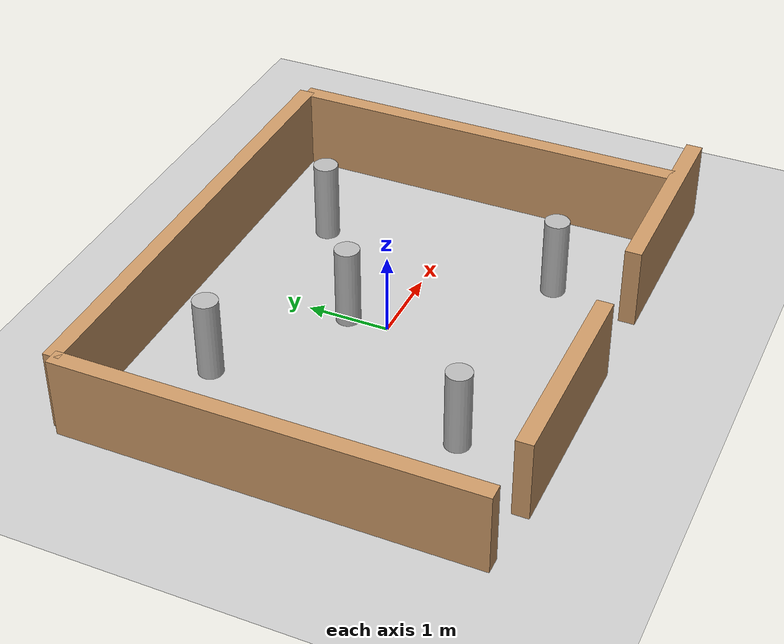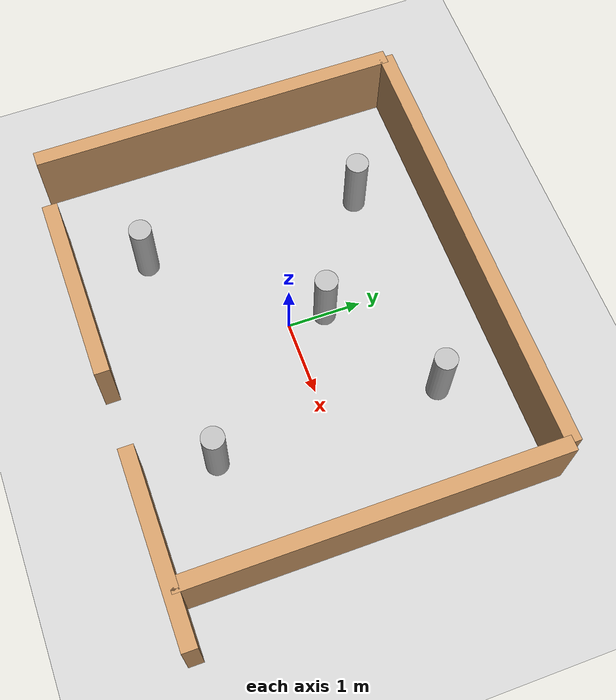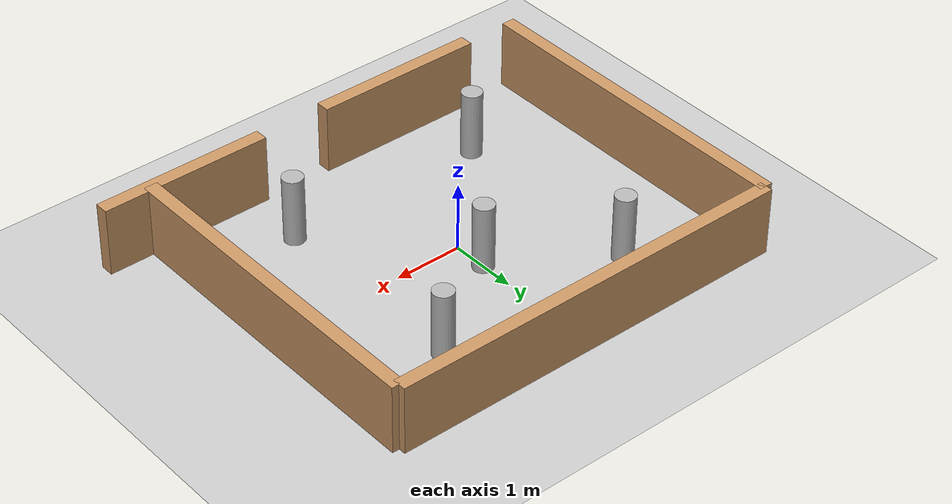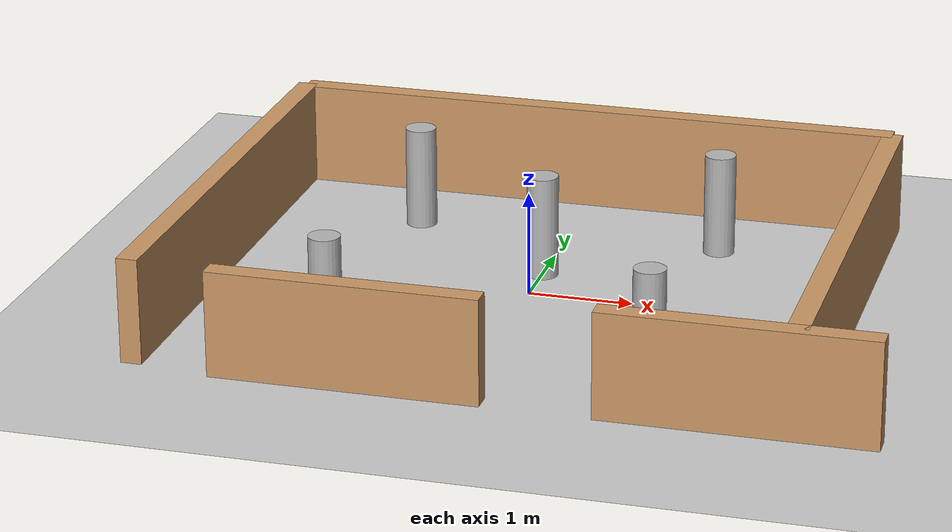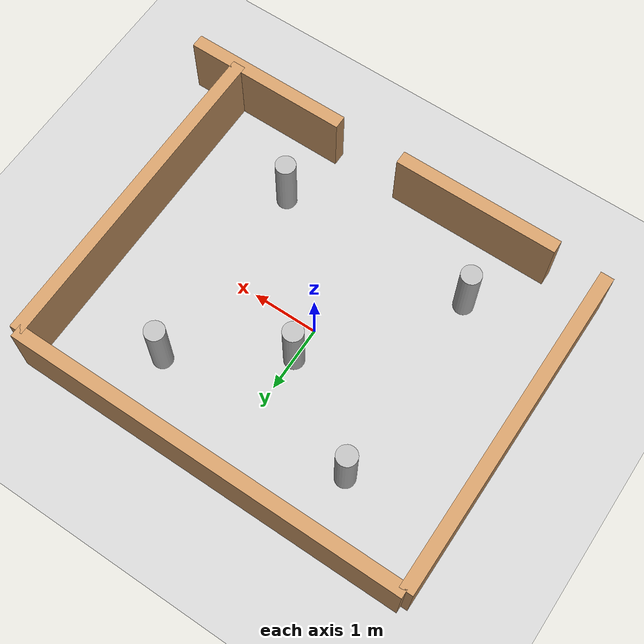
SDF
<?xml version="1.0" ?>
<sdf version="1.6">
  <world name="big_house_world">
    <include><uri>model://ground_plane</uri></include>
    <include><uri>model://sun</uri></include>
    <model name="wall_back"><static>true</static><link name="l"><pose>0 2.5 0.5 0 0 0</pose><collision name="c"><geometry><box><size>6 0.2 1.0</size></box></geometry></collision><visual name="v"><geometry><box><size>6 0.2 1.0</size></box></geometry><material><ambient>0.8 0.6 0.4 1</ambient></material></visual></link></model>
    <model name="wall_front_left"><static>true</static><link name="l"><pose>-1 -2.5 0.5 0 0 0</pose><collision name="c"><geometry><box><size>2.5 0.2 1.0</size></box></geometry></collision><visual name="v"><geometry><box><size>2.5 0.2 1.0</size></box></geometry><material><ambient>0.8 0.6 0.4 1</ambient></material></visual></link></model>
    <model name="wall_front_right"><static>true</static><link name="l"><pose>2.5 -2.5 0.5 0 0 0</pose><collision name="c"><geometry><box><size>2.5 0.2 1.0</size></box></geometry></collision><visual name="v"><geometry><box><size>2.5 0.2 1.0</size></box></geometry><material><ambient>0.8 0.6 0.4 1</ambient></material></visual></link></model>
    <model name="wall_left"><static>true</static><link name="l"><pose>-3 0 0.5 0 0 1.57</pose><collision name="c"><geometry><box><size>5 0.2 1.0</size></box></geometry></collision><visual name="v"><geometry><box><size>5 0.2 1.0</size></box></geometry><material><ambient>0.8 0.6 0.4 1</ambient></material></visual></link></model>
    <model name="wall_right"><static>true</static><link name="l"><pose>3 0 0.5 0 0 1.57</pose><collision name="c"><geometry><box><size>5 0.2 1.0</size></box></geometry></collision><visual name="v"><geometry><box><size>5 0.2 1.0</size></box></geometry><material><ambient>0.8 0.6 0.4 1</ambient></material></visual></link></model>
    <model name="p1"><static>true</static><link name="l"><pose>1.5 1.5 0.5 0 0 0</pose><visual name="v"><geometry><cylinder><radius>0.15</radius><length>1.0</length></cylinder></geometry></visual><collision name="c"><geometry><cylinder><radius>0.15</radius><length>1.0</length></cylinder></geometry></collision></link></model>
    <model name="p2"><static>true</static><link name="l"><pose>-1.5 1.5 0.5 0 0 0</pose><visual name="v"><geometry><cylinder><radius>0.15</radius><length>1.0</length></cylinder></geometry></visual><collision name="c"><geometry><cylinder><radius>0.15</radius><length>1.0</length></cylinder></geometry></collision></link></model>
    <model name="p3"><static>true</static><link name="l"><pose>1.5 -1.5 0.5 0 0 0</pose><visual name="v"><geometry><cylinder><radius>0.15</radius><length>1.0</length></cylinder></geometry></visual><collision name="c"><geometry><cylinder><radius>0.15</radius><length>1.0</length></cylinder></geometry></collision></link></model>
    <model name="p4"><static>true</static><link name="l"><pose>-1.5 -1.5 0.5 0 0 0</pose><visual name="v"><geometry><cylinder><radius>0.15</radius><length>1.0</length></cylinder></geometry></visual><collision name="c"><geometry><cylinder><radius>0.15</radius><length>1.0</length></cylinder></geometry></collision></link></model>
    <model name="p5"><static>true</static><link name="l"><pose>0.0 0.5 0.5 0 0 0</pose><visual name="v"><geometry><cylinder><radius>0.15</radius><length>1.0</length></cylinder></geometry></visual><collision name="c"><geometry><cylinder><radius>0.15</radius><length>1.0</length></cylinder></geometry></collision></link></model>
  </world>
</sdf>
